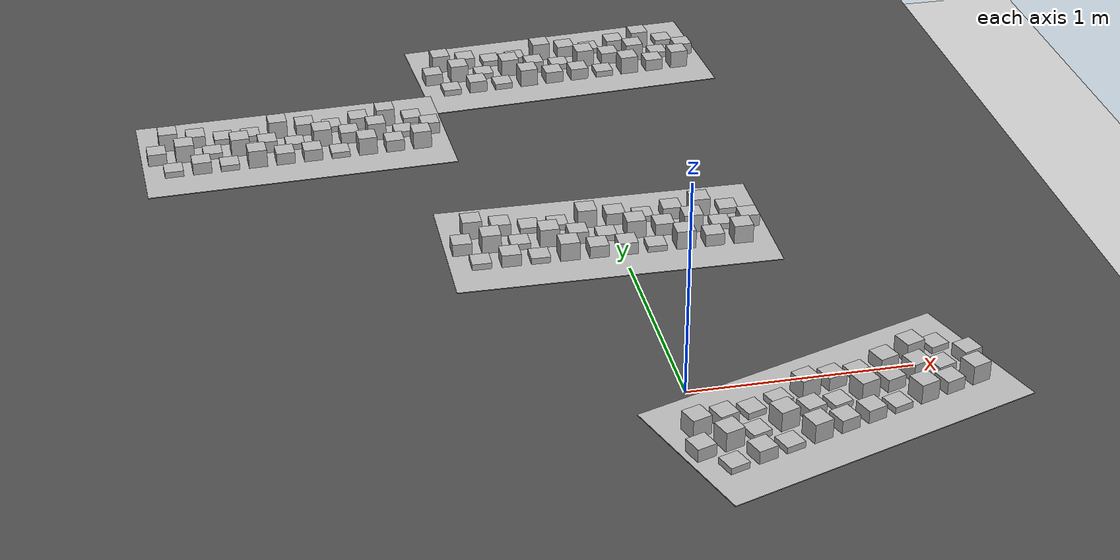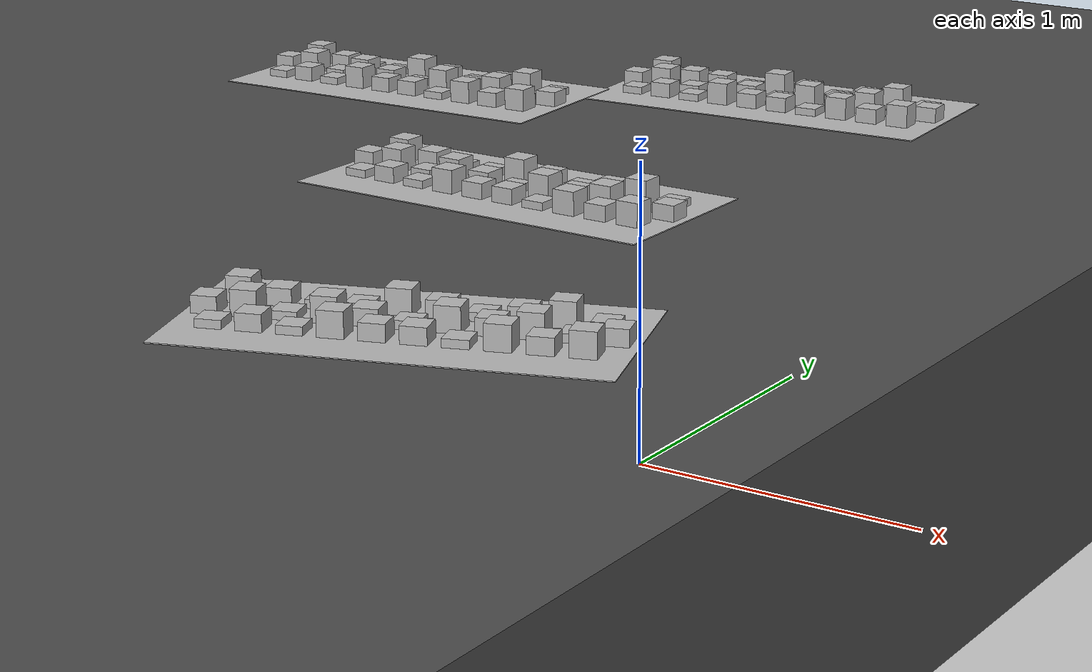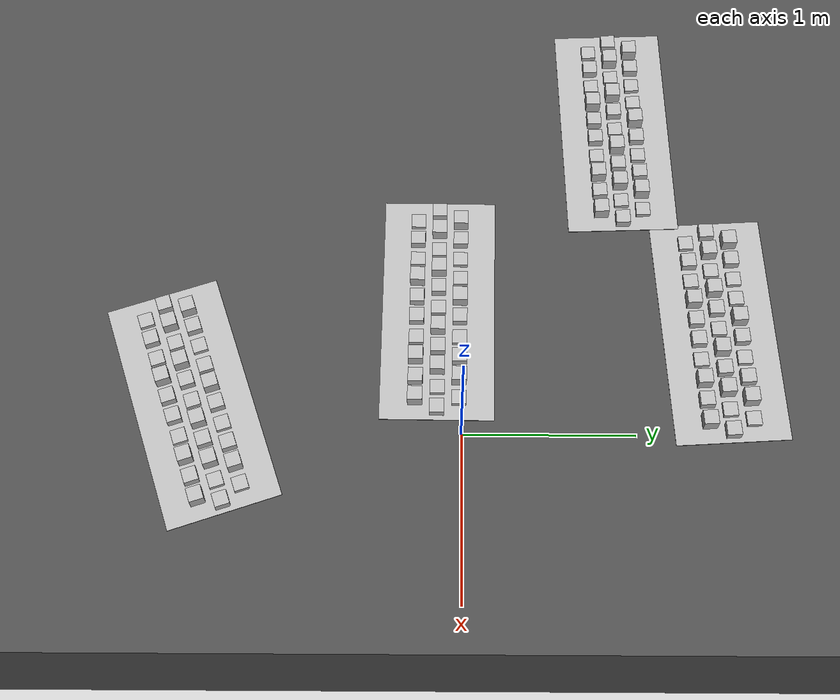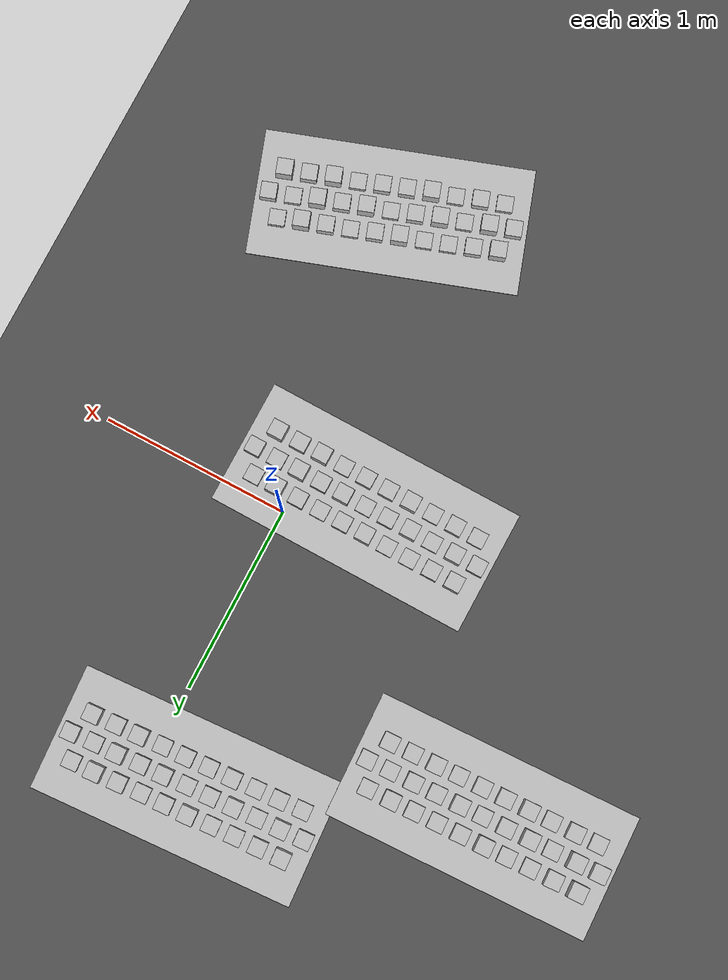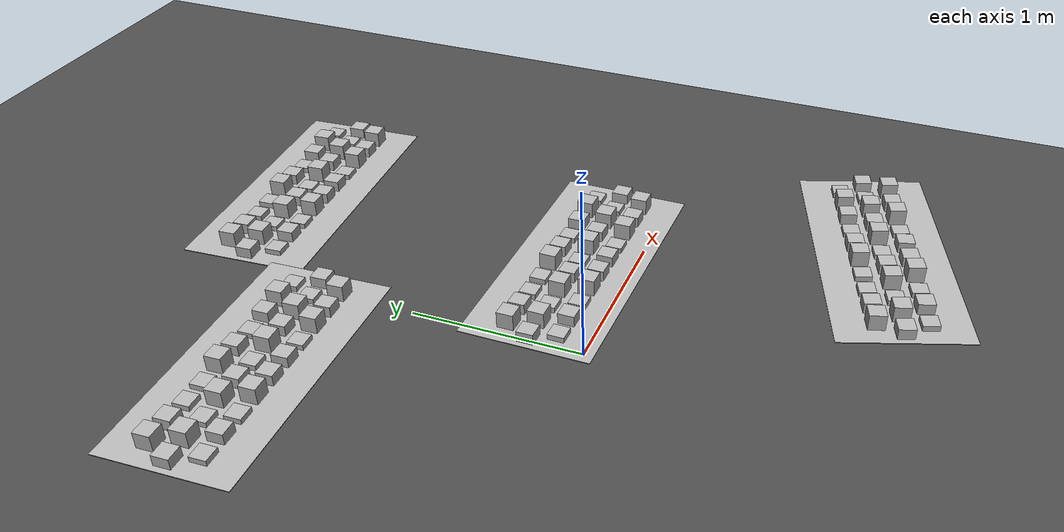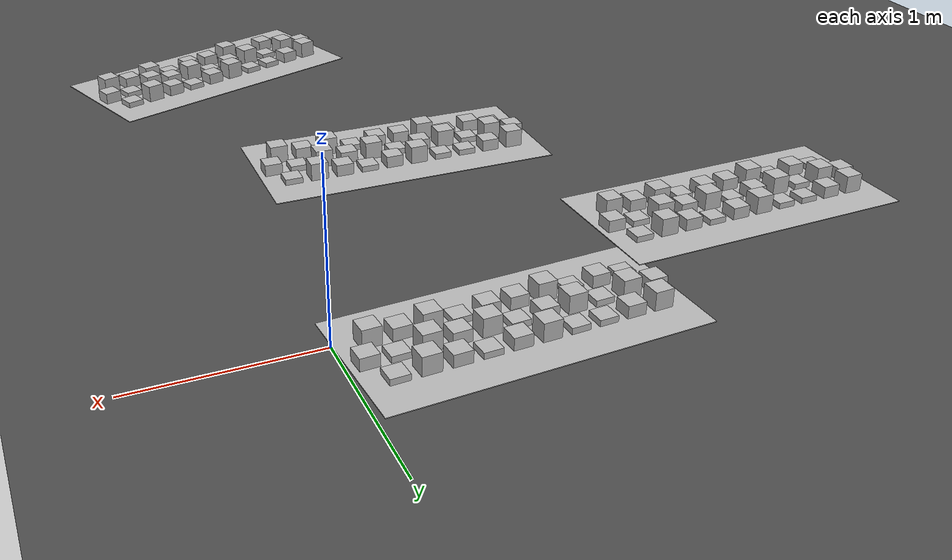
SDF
<sdf version="1.6">
 <world name="default">
  <model name="ground_plane">
   <static>1</static>
   <link name="link">
    <collision name="collision">
     <geometry><plane><normal>0 0 1</normal><size>100 100</size></plane></geometry>
     <surface><friction><ode><mu>100</mu><mu2>50</mu2></ode></friction></surface>
    </collision>
    <visual name="visual">
     <cast_shadows>0</cast_shadows>
     <geometry><plane><normal>0 0 1</normal><size>100 100</size></plane></geometry>
     <material>
      <script><uri>file://media/materials/scripts/gazebo.material</uri><name>Gazebo/Grey</name></script>
     </material>
    </visual>
   </link>
  </model>
  <model name="frc2016_roughterrain">
   <static>0</static>
   <link name="link">
    <visual name="platform">
     <pose>0 0 0.08269 0 -0 0</pose>
     <geometry><box><size>1.27 0.5969 0.003175</size></box></geometry>
    </visual>
    <collision name="platform">
     <pose>0 0 0.08269 0 -0 0</pose>
     <geometry><box><size>1.27 0.5969 0.003175</size></box></geometry>
    </collision>
    <visual name="row1_block1_sm">
     <pose>0.51435 0.1143 0.09698 0 -0 0</pose>
     <geometry><box><size>0.0762 0.0762 0.0254</size></box></geometry>
    </visual>
    <collision name="row1_block1_sm">
     <pose>0.51435 0.1143 0.09698 0 -0 0</pose>
     <geometry><box><size>0.0762 0.0762 0.0254</size></box></geometry>
    </collision>
    <visual name="row1_block2_lg">
     <pose>0.40005 0.1143 0.12238 0 -0 0</pose>
     <geometry><box><size>0.0762 0.0762 0.0762</size></box></geometry>
    </visual>
    <collision name="row1_block2_lg">
     <pose>0.40005 0.1143 0.12238 0 -0 0</pose>
     <geometry><box><size>0.0762 0.0762 0.0762</size></box></geometry>
    </collision>
    <visual name="row1_block3_md">
     <pose>0.28575 0.1143 0.10968 0 -0 0</pose>
     <geometry><box><size>0.0762 0.0762 0.0508</size></box></geometry>
    </visual>
    <collision name="row1_block3_md">
     <pose>0.28575 0.1143 0.10968 0 -0 0</pose>
     <geometry><box><size>0.0762 0.0762 0.0508</size></box></geometry>
    </collision>
    <visual name="row1_block4_sm">
     <pose>0.17145 0.1143 0.09698 0 -0 0</pose>
     <geometry><box><size>0.0762 0.0762 0.0254</size></box></geometry>
    </visual>
    <collision name="row1_block4_sm">
     <pose>0.17145 0.1143 0.09698 0 -0 0</pose>
     <geometry><box><size>0.0762 0.0762 0.0254</size></box></geometry>
    </collision>
    <visual name="row1_block5_md">
     <pose>0.05715 0.1143 0.10968 0 -0 0</pose>
     <geometry><box><size>0.0762 0.0762 0.0508</size></box></geometry>
    </visual>
    <collision name="row1_block5_md">
     <pose>0.05715 0.1143 0.10968 0 -0 0</pose>
     <geometry><box><size>0.0762 0.0762 0.0508</size></box></geometry>
    </collision>
    <visual name="row1_block6_lg">
     <pose>-0.05715 0.1143 0.12238 0 -0 0</pose>
     <geometry><box><size>0.0762 0.0762 0.0762</size></box></geometry>
    </visual>
    <collision name="row1_block6_lg">
     <pose>-0.05715 0.1143 0.12238 0 -0 0</pose>
     <geometry><box><size>0.0762 0.0762 0.0762</size></box></geometry>
    </collision>
    <visual name="row1_block7_sm">
     <pose>-0.17145 0.1143 0.09698 0 -0 0</pose>
     <geometry><box><size>0.0762 0.0762 0.0254</size></box></geometry>
    </visual>
    <collision name="row1_block7_sm">
     <pose>-0.17145 0.1143 0.09698 0 -0 0</pose>
     <geometry><box><size>0.0762 0.0762 0.0254</size></box></geometry>
    </collision>
    <visual name="row1_block8_sm">
     <pose>-0.28575 0.1143 0.09698 0 -0 0</pose>
     <geometry><box><size>0.0762 0.0762 0.0254</size></box></geometry>
    </visual>
    <collision name="row1_block8_sm">
     <pose>-0.28575 0.1143 0.09698 0 -0 0</pose>
     <geometry><box><size>0.0762 0.0762 0.0254</size></box></geometry>
    </collision>
    <visual name="row1_block9_md">
     <pose>-0.40005 0.1143 0.10968 0 -0 0</pose>
     <geometry><box><size>0.0762 0.0762 0.0508</size></box></geometry>
    </visual>
    <collision name="row1_block9_md">
     <pose>-0.40005 0.1143 0.10968 0 -0 0</pose>
     <geometry><box><size>0.0762 0.0762 0.0508</size></box></geometry>
    </collision>
    <visual name="row1_block10_lg">
     <pose>-0.51435 0.1143 0.12238 0 -0 0</pose>
     <geometry><box><size>0.0762 0.0762 0.0762</size></box></geometry>
    </visual>
    <collision name="row1_block10_lg">
     <pose>-0.51435 0.1143 0.12238 0 -0 0</pose>
     <geometry><box><size>0.0762 0.0762 0.0762</size></box></geometry>
    </collision>
    <visual name="row2_block1_md">
     <pose>0.5715 0 0.10968 0 -0 0</pose>
     <geometry><box><size>0.0762 0.0762 0.0508</size></box></geometry>
    </visual>
    <collision name="row2_block1_md">
     <pose>0.5715 0 0.10968 0 -0 0</pose>
     <geometry><box><size>0.0762 0.0762 0.0508</size></box></geometry>
    </collision>
    <visual name="row2_block2_sm">
     <pose>0.4572 0 0.09698 0 -0 0</pose>
     <geometry><box><size>0.0762 0.0762 0.0254</size></box></geometry>
    </visual>
    <collision name="row2_block2_sm">
     <pose>0.4572 0 0.09698 0 -0 0</pose>
     <geometry><box><size>0.0762 0.0762 0.0254</size></box></geometry>
    </collision>
    <visual name="row2_block3_lg">
     <pose>0.3429 0 0.12238 0 -0 0</pose>
     <geometry><box><size>0.0762 0.0762 0.0762</size></box></geometry>
    </visual>
    <collision name="row2_block3_lg">
     <pose>0.3429 0 0.12238 0 -0 0</pose>
     <geometry><box><size>0.0762 0.0762 0.0762</size></box></geometry>
    </collision>
    <visual name="row2_block4_md">
     <pose>0.2286 0 0.10968 0 -0 0</pose>
     <geometry><box><size>0.0762 0.0762 0.0508</size></box></geometry>
    </visual>
    <collision name="row2_block4_md">
     <pose>0.2286 0 0.10968 0 -0 0</pose>
     <geometry><box><size>0.0762 0.0762 0.0508</size></box></geometry>
    </collision>
    <visual name="row2_block5_lg">
     <pose>0.1143 0 0.12238 0 -0 0</pose>
     <geometry><box><size>0.0762 0.0762 0.0762</size></box></geometry>
    </visual>
    <collision name="row2_block5_lg">
     <pose>0.1143 0 0.12238 0 -0 0</pose>
     <geometry><box><size>0.0762 0.0762 0.0762</size></box></geometry>
    </collision>
    <visual name="row2_block6_sm">
     <pose>0 0 0.09698 0 -0 0</pose>
     <geometry><box><size>0.0762 0.0762 0.0254</size></box></geometry>
    </visual>
    <collision name="row2_block6_sm">
     <pose>0 0 0.09698 0 -0 0</pose>
     <geometry><box><size>0.0762 0.0762 0.0254</size></box></geometry>
    </collision>
    <visual name="row2_block7_md">
     <pose>-0.1143 0 0.10968 0 -0 0</pose>
     <geometry><box><size>0.0762 0.0762 0.0508</size></box></geometry>
    </visual>
    <collision name="row2_block7_md">
     <pose>-0.1143 0 0.10968 0 -0 0</pose>
     <geometry><box><size>0.0762 0.0762 0.0508</size></box></geometry>
    </collision>
    <visual name="row2_block8_lg">
     <pose>-0.2286 0 0.12238 0 -0 0</pose>
     <geometry><box><size>0.0762 0.0762 0.0762</size></box></geometry>
    </visual>
    <collision name="row2_block8_lg">
     <pose>-0.2286 0 0.12238 0 -0 0</pose>
     <geometry><box><size>0.0762 0.0762 0.0762</size></box></geometry>
    </collision>
    <visual name="row2_block9_sm">
     <pose>-0.3429 0 0.09698 0 -0 0</pose>
     <geometry><box><size>0.0762 0.0762 0.0254</size></box></geometry>
    </visual>
    <collision name="row2_block9_sm">
     <pose>-0.3429 0 0.09698 0 -0 0</pose>
     <geometry><box><size>0.0762 0.0762 0.0254</size></box></geometry>
    </collision>
    <visual name="row2_block10_lg">
     <pose>-0.4572 0 0.12238 0 -0 0</pose>
     <geometry><box><size>0.0762 0.0762 0.0762</size></box></geometry>
    </visual>
    <collision name="row2_block10_lg">
     <pose>-0.4572 0 0.12238 0 -0 0</pose>
     <geometry><box><size>0.0762 0.0762 0.0762</size></box></geometry>
    </collision>
    <visual name="row2_block11_md">
     <pose>-0.5715 0 0.10968 0 -0 0</pose>
     <geometry><box><size>0.0762 0.0762 0.0508</size></box></geometry>
    </visual>
    <collision name="row2_block11_md">
     <pose>-0.5715 0 0.10968 0 -0 0</pose>
     <geometry><box><size>0.0762 0.0762 0.0508</size></box></geometry>
    </collision>
    <visual name="row3_block1_lg">
     <pose>0.51435 -0.1143 0.12238 0 -0 0</pose>
     <geometry><box><size>0.0762 0.0762 0.0762</size></box></geometry>
    </visual>
    <collision name="row3_block1_lg">
     <pose>0.51435 -0.1143 0.12238 0 -0 0</pose>
     <geometry><box><size>0.0762 0.0762 0.0762</size></box></geometry>
    </collision>
    <visual name="row3_block2_md">
     <pose>0.40005 -0.1143 0.10968 0 -0 0</pose>
     <geometry><box><size>0.0762 0.0762 0.0508</size></box></geometry>
    </visual>
    <collision name="row3_block2_md">
     <pose>0.40005 -0.1143 0.10968 0 -0 0</pose>
     <geometry><box><size>0.0762 0.0762 0.0508</size></box></geometry>
    </collision>
    <visual name="row3_block3_lg">
     <pose>0.28575 -0.1143 0.12238 0 -0 0</pose>
     <geometry><box><size>0.0762 0.0762 0.0762</size></box></geometry>
    </visual>
    <collision name="row3_block3_lg">
     <pose>0.28575 -0.1143 0.12238 0 -0 0</pose>
     <geometry><box><size>0.0762 0.0762 0.0762</size></box></geometry>
    </collision>
    <visual name="row3_block4_sm">
     <pose>0.17145 -0.1143 0.09698 0 -0 0</pose>
     <geometry><box><size>0.0762 0.0762 0.0254</size></box></geometry>
    </visual>
    <collision name="row3_block4_sm">
     <pose>0.17145 -0.1143 0.09698 0 -0 0</pose>
     <geometry><box><size>0.0762 0.0762 0.0254</size></box></geometry>
    </collision>
    <visual name="row3_block5_md">
     <pose>0.05715 -0.1143 0.10968 0 -0 0</pose>
     <geometry><box><size>0.0762 0.0762 0.0508</size></box></geometry>
    </visual>
    <collision name="row3_block5_md">
     <pose>0.05715 -0.1143 0.10968 0 -0 0</pose>
     <geometry><box><size>0.0762 0.0762 0.0508</size></box></geometry>
    </collision>
    <visual name="row3_block6_md">
     <pose>-0.05715 -0.1143 0.10968 0 -0 0</pose>
     <geometry><box><size>0.0762 0.0762 0.0508</size></box></geometry>
    </visual>
    <collision name="row3_block6_md">
     <pose>-0.05715 -0.1143 0.10968 0 -0 0</pose>
     <geometry><box><size>0.0762 0.0762 0.0508</size></box></geometry>
    </collision>
    <visual name="row3_block7_lg">
     <pose>-0.17145 -0.1143 0.12238 0 -0 0</pose>
     <geometry><box><size>0.0762 0.0762 0.0762</size></box></geometry>
    </visual>
    <collision name="row3_block7_lg">
     <pose>-0.17145 -0.1143 0.12238 0 -0 0</pose>
     <geometry><box><size>0.0762 0.0762 0.0762</size></box></geometry>
    </collision>
    <visual name="row3_block8_sm">
     <pose>-0.28575 -0.1143 0.09698 0 -0 0</pose>
     <geometry><box><size>0.0762 0.0762 0.0254</size></box></geometry>
    </visual>
    <collision name="row3_block8_sm">
     <pose>-0.28575 -0.1143 0.09698 0 -0 0</pose>
     <geometry><box><size>0.0762 0.0762 0.0254</size></box></geometry>
    </collision>
    <visual name="row3_block9_md">
     <pose>-0.40005 -0.1143 0.10968 0 -0 0</pose>
     <geometry><box><size>0.0762 0.0762 0.0508</size></box></geometry>
    </visual>
    <collision name="row3_block9_md">
     <pose>-0.40005 -0.1143 0.10968 0 -0 0</pose>
     <geometry><box><size>0.0762 0.0762 0.0508</size></box></geometry>
    </collision>
    <visual name="row3_block10_sm">
     <pose>-0.51435 -0.1143 0.09698 0 -0 0</pose>
     <geometry><box><size>0.0762 0.0762 0.0254</size></box></geometry>
    </visual>
    <collision name="row3_block10_sm">
     <pose>-0.51435 -0.1143 0.09698 0 -0 0</pose>
     <geometry><box><size>0.0762 0.0762 0.0254</size></box></geometry>
    </collision>
    <inertial>
     <inertia><ixx>1</ixx><ixy>0</ixy><ixz>0</ixz><iyy>1</iyy><iyz>0</iyz><izz>1</izz></inertia>
     <mass>1</mass>
    </inertial>
   </link>
   <pose>-0.382374 -0.133527 0.799073 0 0 -0.009462</pose>
  </model>
  <model name="asphalt_plane">
   <static>1</static>
   <link name="link">
    <collision name="collision">
     <geometry><box><size>20 20 1.4296</size></box></geometry>
     <surface><friction><ode><mu>100</mu><mu2>50</mu2></ode></friction></surface>
    </collision>
    <visual name="visual">
     <cast_shadows>0</cast_shadows>
     <geometry><box><size>20 20 1.4296</size></box></geometry>
     <material>
      <script>
       <uri>model://asphalt_plane/materials/scripts</uri>
       <uri>model://asphalt_plane/materials/textures</uri>
       <name>vrc/asphalt</name>
      </script>
     </material>
    </visual>
   </link>
   <pose>-8.53833 2.29833 0.165376 0 -0 0</pose>
  </model>
  <model name="frc2016_roughterrain_1_clone_11_clone">
   <static>0</static>
   <link name="link">
    <visual name="platform">
     <pose>0 0 0.08269 0 -0 0</pose>
     <geometry><box><size>1.27 0.5969 0.003175</size></box></geometry>
    </visual>
    <collision name="platform">
     <pose>0 0 0.08269 0 -0 0</pose>
     <geometry><box><size>1.27 0.5969 0.003175</size></box></geometry>
    </collision>
    <visual name="row1_block1_sm">
     <pose>0.51435 0.1143 0.09698 0 -0 0</pose>
     <geometry><box><size>0.0762 0.0762 0.0254</size></box></geometry>
    </visual>
    <collision name="row1_block1_sm">
     <pose>0.51435 0.1143 0.09698 0 -0 0</pose>
     <geometry><box><size>0.0762 0.0762 0.0254</size></box></geometry>
    </collision>
    <visual name="row1_block2_lg">
     <pose>0.40005 0.1143 0.12238 0 -0 0</pose>
     <geometry><box><size>0.0762 0.0762 0.0762</size></box></geometry>
    </visual>
    <collision name="row1_block2_lg">
     <pose>0.40005 0.1143 0.12238 0 -0 0</pose>
     <geometry><box><size>0.0762 0.0762 0.0762</size></box></geometry>
    </collision>
    <visual name="row1_block3_md">
     <pose>0.28575 0.1143 0.10968 0 -0 0</pose>
     <geometry><box><size>0.0762 0.0762 0.0508</size></box></geometry>
    </visual>
    <collision name="row1_block3_md">
     <pose>0.28575 0.1143 0.10968 0 -0 0</pose>
     <geometry><box><size>0.0762 0.0762 0.0508</size></box></geometry>
    </collision>
    <visual name="row1_block4_sm">
     <pose>0.17145 0.1143 0.09698 0 -0 0</pose>
     <geometry><box><size>0.0762 0.0762 0.0254</size></box></geometry>
    </visual>
    <collision name="row1_block4_sm">
     <pose>0.17145 0.1143 0.09698 0 -0 0</pose>
     <geometry><box><size>0.0762 0.0762 0.0254</size></box></geometry>
    </collision>
    <visual name="row1_block5_md">
     <pose>0.05715 0.1143 0.10968 0 -0 0</pose>
     <geometry><box><size>0.0762 0.0762 0.0508</size></box></geometry>
    </visual>
    <collision name="row1_block5_md">
     <pose>0.05715 0.1143 0.10968 0 -0 0</pose>
     <geometry><box><size>0.0762 0.0762 0.0508</size></box></geometry>
    </collision>
    <visual name="row1_block6_lg">
     <pose>-0.05715 0.1143 0.12238 0 -0 0</pose>
     <geometry><box><size>0.0762 0.0762 0.0762</size></box></geometry>
    </visual>
    <collision name="row1_block6_lg">
     <pose>-0.05715 0.1143 0.12238 0 -0 0</pose>
     <geometry><box><size>0.0762 0.0762 0.0762</size></box></geometry>
    </collision>
    <visual name="row1_block7_sm">
     <pose>-0.17145 0.1143 0.09698 0 -0 0</pose>
     <geometry><box><size>0.0762 0.0762 0.0254</size></box></geometry>
    </visual>
    <collision name="row1_block7_sm">
     <pose>-0.17145 0.1143 0.09698 0 -0 0</pose>
     <geometry><box><size>0.0762 0.0762 0.0254</size></box></geometry>
    </collision>
    <visual name="row1_block8_sm">
     <pose>-0.28575 0.1143 0.09698 0 -0 0</pose>
     <geometry><box><size>0.0762 0.0762 0.0254</size></box></geometry>
    </visual>
    <collision name="row1_block8_sm">
     <pose>-0.28575 0.1143 0.09698 0 -0 0</pose>
     <geometry><box><size>0.0762 0.0762 0.0254</size></box></geometry>
    </collision>
    <visual name="row1_block9_md">
     <pose>-0.40005 0.1143 0.10968 0 -0 0</pose>
     <geometry><box><size>0.0762 0.0762 0.0508</size></box></geometry>
    </visual>
    <collision name="row1_block9_md">
     <pose>-0.40005 0.1143 0.10968 0 -0 0</pose>
     <geometry><box><size>0.0762 0.0762 0.0508</size></box></geometry>
    </collision>
    <visual name="row1_block10_lg">
     <pose>-0.51435 0.1143 0.12238 0 -0 0</pose>
     <geometry><box><size>0.0762 0.0762 0.0762</size></box></geometry>
    </visual>
    <collision name="row1_block10_lg">
     <pose>-0.51435 0.1143 0.12238 0 -0 0</pose>
     <geometry><box><size>0.0762 0.0762 0.0762</size></box></geometry>
    </collision>
    <visual name="row2_block1_md">
     <pose>0.5715 0 0.10968 0 -0 0</pose>
     <geometry><box><size>0.0762 0.0762 0.0508</size></box></geometry>
    </visual>
    <collision name="row2_block1_md">
     <pose>0.5715 0 0.10968 0 -0 0</pose>
     <geometry><box><size>0.0762 0.0762 0.0508</size></box></geometry>
    </collision>
    <visual name="row2_block2_sm">
     <pose>0.4572 0 0.09698 0 -0 0</pose>
     <geometry><box><size>0.0762 0.0762 0.0254</size></box></geometry>
    </visual>
    <collision name="row2_block2_sm">
     <pose>0.4572 0 0.09698 0 -0 0</pose>
     <geometry><box><size>0.0762 0.0762 0.0254</size></box></geometry>
    </collision>
    <visual name="row2_block3_lg">
     <pose>0.3429 0 0.12238 0 -0 0</pose>
     <geometry><box><size>0.0762 0.0762 0.0762</size></box></geometry>
    </visual>
    <collision name="row2_block3_lg">
     <pose>0.3429 0 0.12238 0 -0 0</pose>
     <geometry><box><size>0.0762 0.0762 0.0762</size></box></geometry>
    </collision>
    <visual name="row2_block4_md">
     <pose>0.2286 0 0.10968 0 -0 0</pose>
     <geometry><box><size>0.0762 0.0762 0.0508</size></box></geometry>
    </visual>
    <collision name="row2_block4_md">
     <pose>0.2286 0 0.10968 0 -0 0</pose>
     <geometry><box><size>0.0762 0.0762 0.0508</size></box></geometry>
    </collision>
    <visual name="row2_block5_lg">
     <pose>0.1143 0 0.12238 0 -0 0</pose>
     <geometry><box><size>0.0762 0.0762 0.0762</size></box></geometry>
    </visual>
    <collision name="row2_block5_lg">
     <pose>0.1143 0 0.12238 0 -0 0</pose>
     <geometry><box><size>0.0762 0.0762 0.0762</size></box></geometry>
    </collision>
    <visual name="row2_block6_sm">
     <pose>0 0 0.09698 0 -0 0</pose>
     <geometry><box><size>0.0762 0.0762 0.0254</size></box></geometry>
    </visual>
    <collision name="row2_block6_sm">
     <pose>0 0 0.09698 0 -0 0</pose>
     <geometry><box><size>0.0762 0.0762 0.0254</size></box></geometry>
    </collision>
    <visual name="row2_block7_md">
     <pose>-0.1143 0 0.10968 0 -0 0</pose>
     <geometry><box><size>0.0762 0.0762 0.0508</size></box></geometry>
    </visual>
    <collision name="row2_block7_md">
     <pose>-0.1143 0 0.10968 0 -0 0</pose>
     <geometry><box><size>0.0762 0.0762 0.0508</size></box></geometry>
    </collision>
    <visual name="row2_block8_lg">
     <pose>-0.2286 0 0.12238 0 -0 0</pose>
     <geometry><box><size>0.0762 0.0762 0.0762</size></box></geometry>
    </visual>
    <collision name="row2_block8_lg">
     <pose>-0.2286 0 0.12238 0 -0 0</pose>
     <geometry><box><size>0.0762 0.0762 0.0762</size></box></geometry>
    </collision>
    <visual name="row2_block9_sm">
     <pose>-0.3429 0 0.09698 0 -0 0</pose>
     <geometry><box><size>0.0762 0.0762 0.0254</size></box></geometry>
    </visual>
    <collision name="row2_block9_sm">
     <pose>-0.3429 0 0.09698 0 -0 0</pose>
     <geometry><box><size>0.0762 0.0762 0.0254</size></box></geometry>
    </collision>
    <visual name="row2_block10_lg">
     <pose>-0.4572 0 0.12238 0 -0 0</pose>
     <geometry><box><size>0.0762 0.0762 0.0762</size></box></geometry>
    </visual>
    <collision name="row2_block10_lg">
     <pose>-0.4572 0 0.12238 0 -0 0</pose>
     <geometry><box><size>0.0762 0.0762 0.0762</size></box></geometry>
    </collision>
    <visual name="row2_block11_md">
     <pose>-0.5715 0 0.10968 0 -0 0</pose>
     <geometry><box><size>0.0762 0.0762 0.0508</size></box></geometry>
    </visual>
    <collision name="row2_block11_md">
     <pose>-0.5715 0 0.10968 0 -0 0</pose>
     <geometry><box><size>0.0762 0.0762 0.0508</size></box></geometry>
    </collision>
    <visual name="row3_block1_lg">
     <pose>0.51435 -0.1143 0.12238 0 -0 0</pose>
     <geometry><box><size>0.0762 0.0762 0.0762</size></box></geometry>
    </visual>
    <collision name="row3_block1_lg">
     <pose>0.51435 -0.1143 0.12238 0 -0 0</pose>
     <geometry><box><size>0.0762 0.0762 0.0762</size></box></geometry>
    </collision>
    <visual name="row3_block2_md">
     <pose>0.40005 -0.1143 0.10968 0 -0 0</pose>
     <geometry><box><size>0.0762 0.0762 0.0508</size></box></geometry>
    </visual>
    <collision name="row3_block2_md">
     <pose>0.40005 -0.1143 0.10968 0 -0 0</pose>
     <geometry><box><size>0.0762 0.0762 0.0508</size></box></geometry>
    </collision>
    <visual name="row3_block3_lg">
     <pose>0.28575 -0.1143 0.12238 0 -0 0</pose>
     <geometry><box><size>0.0762 0.0762 0.0762</size></box></geometry>
    </visual>
    <collision name="row3_block3_lg">
     <pose>0.28575 -0.1143 0.12238 0 -0 0</pose>
     <geometry><box><size>0.0762 0.0762 0.0762</size></box></geometry>
    </collision>
    <visual name="row3_block4_sm">
     <pose>0.17145 -0.1143 0.09698 0 -0 0</pose>
     <geometry><box><size>0.0762 0.0762 0.0254</size></box></geometry>
    </visual>
    <collision name="row3_block4_sm">
     <pose>0.17145 -0.1143 0.09698 0 -0 0</pose>
     <geometry><box><size>0.0762 0.0762 0.0254</size></box></geometry>
    </collision>
    <visual name="row3_block5_md">
     <pose>0.05715 -0.1143 0.10968 0 -0 0</pose>
     <geometry><box><size>0.0762 0.0762 0.0508</size></box></geometry>
    </visual>
    <collision name="row3_block5_md">
     <pose>0.05715 -0.1143 0.10968 0 -0 0</pose>
     <geometry><box><size>0.0762 0.0762 0.0508</size></box></geometry>
    </collision>
    <visual name="row3_block6_md">
     <pose>-0.05715 -0.1143 0.10968 0 -0 0</pose>
     <geometry><box><size>0.0762 0.0762 0.0508</size></box></geometry>
    </visual>
    <collision name="row3_block6_md">
     <pose>-0.05715 -0.1143 0.10968 0 -0 0</pose>
     <geometry><box><size>0.0762 0.0762 0.0508</size></box></geometry>
    </collision>
    <visual name="row3_block7_lg">
     <pose>-0.17145 -0.1143 0.12238 0 -0 0</pose>
     <geometry><box><size>0.0762 0.0762 0.0762</size></box></geometry>
    </visual>
    <collision name="row3_block7_lg">
     <pose>-0.17145 -0.1143 0.12238 0 -0 0</pose>
     <geometry><box><size>0.0762 0.0762 0.0762</size></box></geometry>
    </collision>
    <visual name="row3_block8_sm">
     <pose>-0.28575 -0.1143 0.09698 0 -0 0</pose>
     <geometry><box><size>0.0762 0.0762 0.0254</size></box></geometry>
    </visual>
    <collision name="row3_block8_sm">
     <pose>-0.28575 -0.1143 0.09698 0 -0 0</pose>
     <geometry><box><size>0.0762 0.0762 0.0254</size></box></geometry>
    </collision>
    <visual name="row3_block9_md">
     <pose>-0.40005 -0.1143 0.10968 0 -0 0</pose>
     <geometry><box><size>0.0762 0.0762 0.0508</size></box></geometry>
    </visual>
    <collision name="row3_block9_md">
     <pose>-0.40005 -0.1143 0.10968 0 -0 0</pose>
     <geometry><box><size>0.0762 0.0762 0.0508</size></box></geometry>
    </collision>
    <visual name="row3_block10_sm">
     <pose>-0.51435 -0.1143 0.09698 0 -0 0</pose>
     <geometry><box><size>0.0762 0.0762 0.0254</size></box></geometry>
    </visual>
    <collision name="row3_block10_sm">
     <pose>-0.51435 -0.1143 0.09698 0 -0 0</pose>
     <geometry><box><size>0.0762 0.0762 0.0254</size></box></geometry>
    </collision>
    <inertial>
     <inertia><ixx>1</ixx><ixy>0</ixy><ixz>0</ixz><iyy>1</iyy><iyz>0</iyz><izz>1</izz></inertia>
     <mass>1</mass>
    </inertial>
   </link>
   <pose>-0.263297 1.34494 0.800698 2e-06 -0.002582 0.060806</pose>
  </model>
  <model name="frc2016_roughterrain_1_clone_11_clone_0">
   <static>0</static>
   <link name="link">
    <visual name="platform">
     <pose>0 0 0.08269 0 -0 0</pose>
     <geometry><box><size>1.27 0.5969 0.003175</size></box></geometry>
    </visual>
    <collision name="platform">
     <pose>0 0 0.08269 0 -0 0</pose>
     <geometry><box><size>1.27 0.5969 0.003175</size></box></geometry>
    </collision>
    <visual name="row1_block1_sm">
     <pose>0.51435 0.1143 0.09698 0 -0 0</pose>
     <geometry><box><size>0.0762 0.0762 0.0254</size></box></geometry>
    </visual>
    <collision name="row1_block1_sm">
     <pose>0.51435 0.1143 0.09698 0 -0 0</pose>
     <geometry><box><size>0.0762 0.0762 0.0254</size></box></geometry>
    </collision>
    <visual name="row1_block2_lg">
     <pose>0.40005 0.1143 0.12238 0 -0 0</pose>
     <geometry><box><size>0.0762 0.0762 0.0762</size></box></geometry>
    </visual>
    <collision name="row1_block2_lg">
     <pose>0.40005 0.1143 0.12238 0 -0 0</pose>
     <geometry><box><size>0.0762 0.0762 0.0762</size></box></geometry>
    </collision>
    <visual name="row1_block3_md">
     <pose>0.28575 0.1143 0.10968 0 -0 0</pose>
     <geometry><box><size>0.0762 0.0762 0.0508</size></box></geometry>
    </visual>
    <collision name="row1_block3_md">
     <pose>0.28575 0.1143 0.10968 0 -0 0</pose>
     <geometry><box><size>0.0762 0.0762 0.0508</size></box></geometry>
    </collision>
    <visual name="row1_block4_sm">
     <pose>0.17145 0.1143 0.09698 0 -0 0</pose>
     <geometry><box><size>0.0762 0.0762 0.0254</size></box></geometry>
    </visual>
    <collision name="row1_block4_sm">
     <pose>0.17145 0.1143 0.09698 0 -0 0</pose>
     <geometry><box><size>0.0762 0.0762 0.0254</size></box></geometry>
    </collision>
    <visual name="row1_block5_md">
     <pose>0.05715 0.1143 0.10968 0 -0 0</pose>
     <geometry><box><size>0.0762 0.0762 0.0508</size></box></geometry>
    </visual>
    <collision name="row1_block5_md">
     <pose>0.05715 0.1143 0.10968 0 -0 0</pose>
     <geometry><box><size>0.0762 0.0762 0.0508</size></box></geometry>
    </collision>
    <visual name="row1_block6_lg">
     <pose>-0.05715 0.1143 0.12238 0 -0 0</pose>
     <geometry><box><size>0.0762 0.0762 0.0762</size></box></geometry>
    </visual>
    <collision name="row1_block6_lg">
     <pose>-0.05715 0.1143 0.12238 0 -0 0</pose>
     <geometry><box><size>0.0762 0.0762 0.0762</size></box></geometry>
    </collision>
    <visual name="row1_block7_sm">
     <pose>-0.17145 0.1143 0.09698 0 -0 0</pose>
     <geometry><box><size>0.0762 0.0762 0.0254</size></box></geometry>
    </visual>
    <collision name="row1_block7_sm">
     <pose>-0.17145 0.1143 0.09698 0 -0 0</pose>
     <geometry><box><size>0.0762 0.0762 0.0254</size></box></geometry>
    </collision>
    <visual name="row1_block8_sm">
     <pose>-0.28575 0.1143 0.09698 0 -0 0</pose>
     <geometry><box><size>0.0762 0.0762 0.0254</size></box></geometry>
    </visual>
    <collision name="row1_block8_sm">
     <pose>-0.28575 0.1143 0.09698 0 -0 0</pose>
     <geometry><box><size>0.0762 0.0762 0.0254</size></box></geometry>
    </collision>
    <visual name="row1_block9_md">
     <pose>-0.40005 0.1143 0.10968 0 -0 0</pose>
     <geometry><box><size>0.0762 0.0762 0.0508</size></box></geometry>
    </visual>
    <collision name="row1_block9_md">
     <pose>-0.40005 0.1143 0.10968 0 -0 0</pose>
     <geometry><box><size>0.0762 0.0762 0.0508</size></box></geometry>
    </collision>
    <visual name="row1_block10_lg">
     <pose>-0.51435 0.1143 0.12238 0 -0 0</pose>
     <geometry><box><size>0.0762 0.0762 0.0762</size></box></geometry>
    </visual>
    <collision name="row1_block10_lg">
     <pose>-0.51435 0.1143 0.12238 0 -0 0</pose>
     <geometry><box><size>0.0762 0.0762 0.0762</size></box></geometry>
    </collision>
    <visual name="row2_block1_md">
     <pose>0.5715 0 0.10968 0 -0 0</pose>
     <geometry><box><size>0.0762 0.0762 0.0508</size></box></geometry>
    </visual>
    <collision name="row2_block1_md">
     <pose>0.5715 0 0.10968 0 -0 0</pose>
     <geometry><box><size>0.0762 0.0762 0.0508</size></box></geometry>
    </collision>
    <visual name="row2_block2_sm">
     <pose>0.4572 0 0.09698 0 -0 0</pose>
     <geometry><box><size>0.0762 0.0762 0.0254</size></box></geometry>
    </visual>
    <collision name="row2_block2_sm">
     <pose>0.4572 0 0.09698 0 -0 0</pose>
     <geometry><box><size>0.0762 0.0762 0.0254</size></box></geometry>
    </collision>
    <visual name="row2_block3_lg">
     <pose>0.3429 0 0.12238 0 -0 0</pose>
     <geometry><box><size>0.0762 0.0762 0.0762</size></box></geometry>
    </visual>
    <collision name="row2_block3_lg">
     <pose>0.3429 0 0.12238 0 -0 0</pose>
     <geometry><box><size>0.0762 0.0762 0.0762</size></box></geometry>
    </collision>
    <visual name="row2_block4_md">
     <pose>0.2286 0 0.10968 0 -0 0</pose>
     <geometry><box><size>0.0762 0.0762 0.0508</size></box></geometry>
    </visual>
    <collision name="row2_block4_md">
     <pose>0.2286 0 0.10968 0 -0 0</pose>
     <geometry><box><size>0.0762 0.0762 0.0508</size></box></geometry>
    </collision>
    <visual name="row2_block5_lg">
     <pose>0.1143 0 0.12238 0 -0 0</pose>
     <geometry><box><size>0.0762 0.0762 0.0762</size></box></geometry>
    </visual>
    <collision name="row2_block5_lg">
     <pose>0.1143 0 0.12238 0 -0 0</pose>
     <geometry><box><size>0.0762 0.0762 0.0762</size></box></geometry>
    </collision>
    <visual name="row2_block6_sm">
     <pose>0 0 0.09698 0 -0 0</pose>
     <geometry><box><size>0.0762 0.0762 0.0254</size></box></geometry>
    </visual>
    <collision name="row2_block6_sm">
     <pose>0 0 0.09698 0 -0 0</pose>
     <geometry><box><size>0.0762 0.0762 0.0254</size></box></geometry>
    </collision>
    <visual name="row2_block7_md">
     <pose>-0.1143 0 0.10968 0 -0 0</pose>
     <geometry><box><size>0.0762 0.0762 0.0508</size></box></geometry>
    </visual>
    <collision name="row2_block7_md">
     <pose>-0.1143 0 0.10968 0 -0 0</pose>
     <geometry><box><size>0.0762 0.0762 0.0508</size></box></geometry>
    </collision>
    <visual name="row2_block8_lg">
     <pose>-0.2286 0 0.12238 0 -0 0</pose>
     <geometry><box><size>0.0762 0.0762 0.0762</size></box></geometry>
    </visual>
    <collision name="row2_block8_lg">
     <pose>-0.2286 0 0.12238 0 -0 0</pose>
     <geometry><box><size>0.0762 0.0762 0.0762</size></box></geometry>
    </collision>
    <visual name="row2_block9_sm">
     <pose>-0.3429 0 0.09698 0 -0 0</pose>
     <geometry><box><size>0.0762 0.0762 0.0254</size></box></geometry>
    </visual>
    <collision name="row2_block9_sm">
     <pose>-0.3429 0 0.09698 0 -0 0</pose>
     <geometry><box><size>0.0762 0.0762 0.0254</size></box></geometry>
    </collision>
    <visual name="row2_block10_lg">
     <pose>-0.4572 0 0.12238 0 -0 0</pose>
     <geometry><box><size>0.0762 0.0762 0.0762</size></box></geometry>
    </visual>
    <collision name="row2_block10_lg">
     <pose>-0.4572 0 0.12238 0 -0 0</pose>
     <geometry><box><size>0.0762 0.0762 0.0762</size></box></geometry>
    </collision>
    <visual name="row2_block11_md">
     <pose>-0.5715 0 0.10968 0 -0 0</pose>
     <geometry><box><size>0.0762 0.0762 0.0508</size></box></geometry>
    </visual>
    <collision name="row2_block11_md">
     <pose>-0.5715 0 0.10968 0 -0 0</pose>
     <geometry><box><size>0.0762 0.0762 0.0508</size></box></geometry>
    </collision>
    <visual name="row3_block1_lg">
     <pose>0.51435 -0.1143 0.12238 0 -0 0</pose>
     <geometry><box><size>0.0762 0.0762 0.0762</size></box></geometry>
    </visual>
    <collision name="row3_block1_lg">
     <pose>0.51435 -0.1143 0.12238 0 -0 0</pose>
     <geometry><box><size>0.0762 0.0762 0.0762</size></box></geometry>
    </collision>
    <visual name="row3_block2_md">
     <pose>0.40005 -0.1143 0.10968 0 -0 0</pose>
     <geometry><box><size>0.0762 0.0762 0.0508</size></box></geometry>
    </visual>
    <collision name="row3_block2_md">
     <pose>0.40005 -0.1143 0.10968 0 -0 0</pose>
     <geometry><box><size>0.0762 0.0762 0.0508</size></box></geometry>
    </collision>
    <visual name="row3_block3_lg">
     <pose>0.28575 -0.1143 0.12238 0 -0 0</pose>
     <geometry><box><size>0.0762 0.0762 0.0762</size></box></geometry>
    </visual>
    <collision name="row3_block3_lg">
     <pose>0.28575 -0.1143 0.12238 0 -0 0</pose>
     <geometry><box><size>0.0762 0.0762 0.0762</size></box></geometry>
    </collision>
    <visual name="row3_block4_sm">
     <pose>0.17145 -0.1143 0.09698 0 -0 0</pose>
     <geometry><box><size>0.0762 0.0762 0.0254</size></box></geometry>
    </visual>
    <collision name="row3_block4_sm">
     <pose>0.17145 -0.1143 0.09698 0 -0 0</pose>
     <geometry><box><size>0.0762 0.0762 0.0254</size></box></geometry>
    </collision>
    <visual name="row3_block5_md">
     <pose>0.05715 -0.1143 0.10968 0 -0 0</pose>
     <geometry><box><size>0.0762 0.0762 0.0508</size></box></geometry>
    </visual>
    <collision name="row3_block5_md">
     <pose>0.05715 -0.1143 0.10968 0 -0 0</pose>
     <geometry><box><size>0.0762 0.0762 0.0508</size></box></geometry>
    </collision>
    <visual name="row3_block6_md">
     <pose>-0.05715 -0.1143 0.10968 0 -0 0</pose>
     <geometry><box><size>0.0762 0.0762 0.0508</size></box></geometry>
    </visual>
    <collision name="row3_block6_md">
     <pose>-0.05715 -0.1143 0.10968 0 -0 0</pose>
     <geometry><box><size>0.0762 0.0762 0.0508</size></box></geometry>
    </collision>
    <visual name="row3_block7_lg">
     <pose>-0.17145 -0.1143 0.12238 0 -0 0</pose>
     <geometry><box><size>0.0762 0.0762 0.0762</size></box></geometry>
    </visual>
    <collision name="row3_block7_lg">
     <pose>-0.17145 -0.1143 0.12238 0 -0 0</pose>
     <geometry><box><size>0.0762 0.0762 0.0762</size></box></geometry>
    </collision>
    <visual name="row3_block8_sm">
     <pose>-0.28575 -0.1143 0.09698 0 -0 0</pose>
     <geometry><box><size>0.0762 0.0762 0.0254</size></box></geometry>
    </visual>
    <collision name="row3_block8_sm">
     <pose>-0.28575 -0.1143 0.09698 0 -0 0</pose>
     <geometry><box><size>0.0762 0.0762 0.0254</size></box></geometry>
    </collision>
    <visual name="row3_block9_md">
     <pose>-0.40005 -0.1143 0.10968 0 -0 0</pose>
     <geometry><box><size>0.0762 0.0762 0.0508</size></box></geometry>
    </visual>
    <collision name="row3_block9_md">
     <pose>-0.40005 -0.1143 0.10968 0 -0 0</pose>
     <geometry><box><size>0.0762 0.0762 0.0508</size></box></geometry>
    </collision>
    <visual name="row3_block10_sm">
     <pose>-0.51435 -0.1143 0.09698 0 -0 0</pose>
     <geometry><box><size>0.0762 0.0762 0.0254</size></box></geometry>
    </visual>
    <collision name="row3_block10_sm">
     <pose>-0.51435 -0.1143 0.09698 0 -0 0</pose>
     <geometry><box><size>0.0762 0.0762 0.0254</size></box></geometry>
    </collision>
    <inertial>
     <inertia><ixx>1</ixx><ixy>0</ixy><ixz>0</ixz><iyy>1</iyy><iyz>0</iyz><izz>1</izz></inertia>
     <mass>1</mass>
    </inertial>
   </link>
   <pose>-1.49006 0.846207 0.800683 5.7e-05 -0.002507 0.03541</pose>
  </model>
  <model name="frc2016_roughterrain_1_clone_11_clone_2">
   <static>0</static>
   <link name="link">
    <visual name="platform">
     <pose>0 0 0.08269 0 -0 0</pose>
     <geometry><box><size>1.27 0.5969 0.003175</size></box></geometry>
    </visual>
    <collision name="platform">
     <pose>0 0 0.08269 0 -0 0</pose>
     <geometry><box><size>1.27 0.5969 0.003175</size></box></geometry>
    </collision>
    <visual name="row1_block1_sm">
     <pose>0.51435 0.1143 0.09698 0 -0 0</pose>
     <geometry><box><size>0.0762 0.0762 0.0254</size></box></geometry>
    </visual>
    <collision name="row1_block1_sm">
     <pose>0.51435 0.1143 0.09698 0 -0 0</pose>
     <geometry><box><size>0.0762 0.0762 0.0254</size></box></geometry>
    </collision>
    <visual name="row1_block2_lg">
     <pose>0.40005 0.1143 0.12238 0 -0 0</pose>
     <geometry><box><size>0.0762 0.0762 0.0762</size></box></geometry>
    </visual>
    <collision name="row1_block2_lg">
     <pose>0.40005 0.1143 0.12238 0 -0 0</pose>
     <geometry><box><size>0.0762 0.0762 0.0762</size></box></geometry>
    </collision>
    <visual name="row1_block3_md">
     <pose>0.28575 0.1143 0.10968 0 -0 0</pose>
     <geometry><box><size>0.0762 0.0762 0.0508</size></box></geometry>
    </visual>
    <collision name="row1_block3_md">
     <pose>0.28575 0.1143 0.10968 0 -0 0</pose>
     <geometry><box><size>0.0762 0.0762 0.0508</size></box></geometry>
    </collision>
    <visual name="row1_block4_sm">
     <pose>0.17145 0.1143 0.09698 0 -0 0</pose>
     <geometry><box><size>0.0762 0.0762 0.0254</size></box></geometry>
    </visual>
    <collision name="row1_block4_sm">
     <pose>0.17145 0.1143 0.09698 0 -0 0</pose>
     <geometry><box><size>0.0762 0.0762 0.0254</size></box></geometry>
    </collision>
    <visual name="row1_block5_md">
     <pose>0.05715 0.1143 0.10968 0 -0 0</pose>
     <geometry><box><size>0.0762 0.0762 0.0508</size></box></geometry>
    </visual>
    <collision name="row1_block5_md">
     <pose>0.05715 0.1143 0.10968 0 -0 0</pose>
     <geometry><box><size>0.0762 0.0762 0.0508</size></box></geometry>
    </collision>
    <visual name="row1_block6_lg">
     <pose>-0.05715 0.1143 0.12238 0 -0 0</pose>
     <geometry><box><size>0.0762 0.0762 0.0762</size></box></geometry>
    </visual>
    <collision name="row1_block6_lg">
     <pose>-0.05715 0.1143 0.12238 0 -0 0</pose>
     <geometry><box><size>0.0762 0.0762 0.0762</size></box></geometry>
    </collision>
    <visual name="row1_block7_sm">
     <pose>-0.17145 0.1143 0.09698 0 -0 0</pose>
     <geometry><box><size>0.0762 0.0762 0.0254</size></box></geometry>
    </visual>
    <collision name="row1_block7_sm">
     <pose>-0.17145 0.1143 0.09698 0 -0 0</pose>
     <geometry><box><size>0.0762 0.0762 0.0254</size></box></geometry>
    </collision>
    <visual name="row1_block8_sm">
     <pose>-0.28575 0.1143 0.09698 0 -0 0</pose>
     <geometry><box><size>0.0762 0.0762 0.0254</size></box></geometry>
    </visual>
    <collision name="row1_block8_sm">
     <pose>-0.28575 0.1143 0.09698 0 -0 0</pose>
     <geometry><box><size>0.0762 0.0762 0.0254</size></box></geometry>
    </collision>
    <visual name="row1_block9_md">
     <pose>-0.40005 0.1143 0.10968 0 -0 0</pose>
     <geometry><box><size>0.0762 0.0762 0.0508</size></box></geometry>
    </visual>
    <collision name="row1_block9_md">
     <pose>-0.40005 0.1143 0.10968 0 -0 0</pose>
     <geometry><box><size>0.0762 0.0762 0.0508</size></box></geometry>
    </collision>
    <visual name="row1_block10_lg">
     <pose>-0.51435 0.1143 0.12238 0 -0 0</pose>
     <geometry><box><size>0.0762 0.0762 0.0762</size></box></geometry>
    </visual>
    <collision name="row1_block10_lg">
     <pose>-0.51435 0.1143 0.12238 0 -0 0</pose>
     <geometry><box><size>0.0762 0.0762 0.0762</size></box></geometry>
    </collision>
    <visual name="row2_block1_md">
     <pose>0.5715 0 0.10968 0 -0 0</pose>
     <geometry><box><size>0.0762 0.0762 0.0508</size></box></geometry>
    </visual>
    <collision name="row2_block1_md">
     <pose>0.5715 0 0.10968 0 -0 0</pose>
     <geometry><box><size>0.0762 0.0762 0.0508</size></box></geometry>
    </collision>
    <visual name="row2_block2_sm">
     <pose>0.4572 0 0.09698 0 -0 0</pose>
     <geometry><box><size>0.0762 0.0762 0.0254</size></box></geometry>
    </visual>
    <collision name="row2_block2_sm">
     <pose>0.4572 0 0.09698 0 -0 0</pose>
     <geometry><box><size>0.0762 0.0762 0.0254</size></box></geometry>
    </collision>
    <visual name="row2_block3_lg">
     <pose>0.3429 0 0.12238 0 -0 0</pose>
     <geometry><box><size>0.0762 0.0762 0.0762</size></box></geometry>
    </visual>
    <collision name="row2_block3_lg">
     <pose>0.3429 0 0.12238 0 -0 0</pose>
     <geometry><box><size>0.0762 0.0762 0.0762</size></box></geometry>
    </collision>
    <visual name="row2_block4_md">
     <pose>0.2286 0 0.10968 0 -0 0</pose>
     <geometry><box><size>0.0762 0.0762 0.0508</size></box></geometry>
    </visual>
    <collision name="row2_block4_md">
     <pose>0.2286 0 0.10968 0 -0 0</pose>
     <geometry><box><size>0.0762 0.0762 0.0508</size></box></geometry>
    </collision>
    <visual name="row2_block5_lg">
     <pose>0.1143 0 0.12238 0 -0 0</pose>
     <geometry><box><size>0.0762 0.0762 0.0762</size></box></geometry>
    </visual>
    <collision name="row2_block5_lg">
     <pose>0.1143 0 0.12238 0 -0 0</pose>
     <geometry><box><size>0.0762 0.0762 0.0762</size></box></geometry>
    </collision>
    <visual name="row2_block6_sm">
     <pose>0 0 0.09698 0 -0 0</pose>
     <geometry><box><size>0.0762 0.0762 0.0254</size></box></geometry>
    </visual>
    <collision name="row2_block6_sm">
     <pose>0 0 0.09698 0 -0 0</pose>
     <geometry><box><size>0.0762 0.0762 0.0254</size></box></geometry>
    </collision>
    <visual name="row2_block7_md">
     <pose>-0.1143 0 0.10968 0 -0 0</pose>
     <geometry><box><size>0.0762 0.0762 0.0508</size></box></geometry>
    </visual>
    <collision name="row2_block7_md">
     <pose>-0.1143 0 0.10968 0 -0 0</pose>
     <geometry><box><size>0.0762 0.0762 0.0508</size></box></geometry>
    </collision>
    <visual name="row2_block8_lg">
     <pose>-0.2286 0 0.12238 0 -0 0</pose>
     <geometry><box><size>0.0762 0.0762 0.0762</size></box></geometry>
    </visual>
    <collision name="row2_block8_lg">
     <pose>-0.2286 0 0.12238 0 -0 0</pose>
     <geometry><box><size>0.0762 0.0762 0.0762</size></box></geometry>
    </collision>
    <visual name="row2_block9_sm">
     <pose>-0.3429 0 0.09698 0 -0 0</pose>
     <geometry><box><size>0.0762 0.0762 0.0254</size></box></geometry>
    </visual>
    <collision name="row2_block9_sm">
     <pose>-0.3429 0 0.09698 0 -0 0</pose>
     <geometry><box><size>0.0762 0.0762 0.0254</size></box></geometry>
    </collision>
    <visual name="row2_block10_lg">
     <pose>-0.4572 0 0.12238 0 -0 0</pose>
     <geometry><box><size>0.0762 0.0762 0.0762</size></box></geometry>
    </visual>
    <collision name="row2_block10_lg">
     <pose>-0.4572 0 0.12238 0 -0 0</pose>
     <geometry><box><size>0.0762 0.0762 0.0762</size></box></geometry>
    </collision>
    <visual name="row2_block11_md">
     <pose>-0.5715 0 0.10968 0 -0 0</pose>
     <geometry><box><size>0.0762 0.0762 0.0508</size></box></geometry>
    </visual>
    <collision name="row2_block11_md">
     <pose>-0.5715 0 0.10968 0 -0 0</pose>
     <geometry><box><size>0.0762 0.0762 0.0508</size></box></geometry>
    </collision>
    <visual name="row3_block1_lg">
     <pose>0.51435 -0.1143 0.12238 0 -0 0</pose>
     <geometry><box><size>0.0762 0.0762 0.0762</size></box></geometry>
    </visual>
    <collision name="row3_block1_lg">
     <pose>0.51435 -0.1143 0.12238 0 -0 0</pose>
     <geometry><box><size>0.0762 0.0762 0.0762</size></box></geometry>
    </collision>
    <visual name="row3_block2_md">
     <pose>0.40005 -0.1143 0.10968 0 -0 0</pose>
     <geometry><box><size>0.0762 0.0762 0.0508</size></box></geometry>
    </visual>
    <collision name="row3_block2_md">
     <pose>0.40005 -0.1143 0.10968 0 -0 0</pose>
     <geometry><box><size>0.0762 0.0762 0.0508</size></box></geometry>
    </collision>
    <visual name="row3_block3_lg">
     <pose>0.28575 -0.1143 0.12238 0 -0 0</pose>
     <geometry><box><size>0.0762 0.0762 0.0762</size></box></geometry>
    </visual>
    <collision name="row3_block3_lg">
     <pose>0.28575 -0.1143 0.12238 0 -0 0</pose>
     <geometry><box><size>0.0762 0.0762 0.0762</size></box></geometry>
    </collision>
    <visual name="row3_block4_sm">
     <pose>0.17145 -0.1143 0.09698 0 -0 0</pose>
     <geometry><box><size>0.0762 0.0762 0.0254</size></box></geometry>
    </visual>
    <collision name="row3_block4_sm">
     <pose>0.17145 -0.1143 0.09698 0 -0 0</pose>
     <geometry><box><size>0.0762 0.0762 0.0254</size></box></geometry>
    </collision>
    <visual name="row3_block5_md">
     <pose>0.05715 -0.1143 0.10968 0 -0 0</pose>
     <geometry><box><size>0.0762 0.0762 0.0508</size></box></geometry>
    </visual>
    <collision name="row3_block5_md">
     <pose>0.05715 -0.1143 0.10968 0 -0 0</pose>
     <geometry><box><size>0.0762 0.0762 0.0508</size></box></geometry>
    </collision>
    <visual name="row3_block6_md">
     <pose>-0.05715 -0.1143 0.10968 0 -0 0</pose>
     <geometry><box><size>0.0762 0.0762 0.0508</size></box></geometry>
    </visual>
    <collision name="row3_block6_md">
     <pose>-0.05715 -0.1143 0.10968 0 -0 0</pose>
     <geometry><box><size>0.0762 0.0762 0.0508</size></box></geometry>
    </collision>
    <visual name="row3_block7_lg">
     <pose>-0.17145 -0.1143 0.12238 0 -0 0</pose>
     <geometry><box><size>0.0762 0.0762 0.0762</size></box></geometry>
    </visual>
    <collision name="row3_block7_lg">
     <pose>-0.17145 -0.1143 0.12238 0 -0 0</pose>
     <geometry><box><size>0.0762 0.0762 0.0762</size></box></geometry>
    </collision>
    <visual name="row3_block8_sm">
     <pose>-0.28575 -0.1143 0.09698 0 -0 0</pose>
     <geometry><box><size>0.0762 0.0762 0.0254</size></box></geometry>
    </visual>
    <collision name="row3_block8_sm">
     <pose>-0.28575 -0.1143 0.09698 0 -0 0</pose>
     <geometry><box><size>0.0762 0.0762 0.0254</size></box></geometry>
    </collision>
    <visual name="row3_block9_md">
     <pose>-0.40005 -0.1143 0.10968 0 -0 0</pose>
     <geometry><box><size>0.0762 0.0762 0.0508</size></box></geometry>
    </visual>
    <collision name="row3_block9_md">
     <pose>-0.40005 -0.1143 0.10968 0 -0 0</pose>
     <geometry><box><size>0.0762 0.0762 0.0508</size></box></geometry>
    </collision>
    <visual name="row3_block10_sm">
     <pose>-0.51435 -0.1143 0.09698 0 -0 0</pose>
     <geometry><box><size>0.0762 0.0762 0.0254</size></box></geometry>
    </visual>
    <collision name="row3_block10_sm">
     <pose>-0.51435 -0.1143 0.09698 0 -0 0</pose>
     <geometry><box><size>0.0762 0.0762 0.0254</size></box></geometry>
    </collision>
    <inertial>
     <inertia><ixx>1</ixx><ixy>0</ixy><ixz>0</ixz><iyy>1</iyy><iyz>0</iyz><izz>1</izz></inertia>
     <mass>1</mass>
    </inertial>
   </link>
   <pose>0.155418 -1.40195 0.799073 -1e-06 0 0.330572</pose>
  </model>
 </world>
</sdf>
